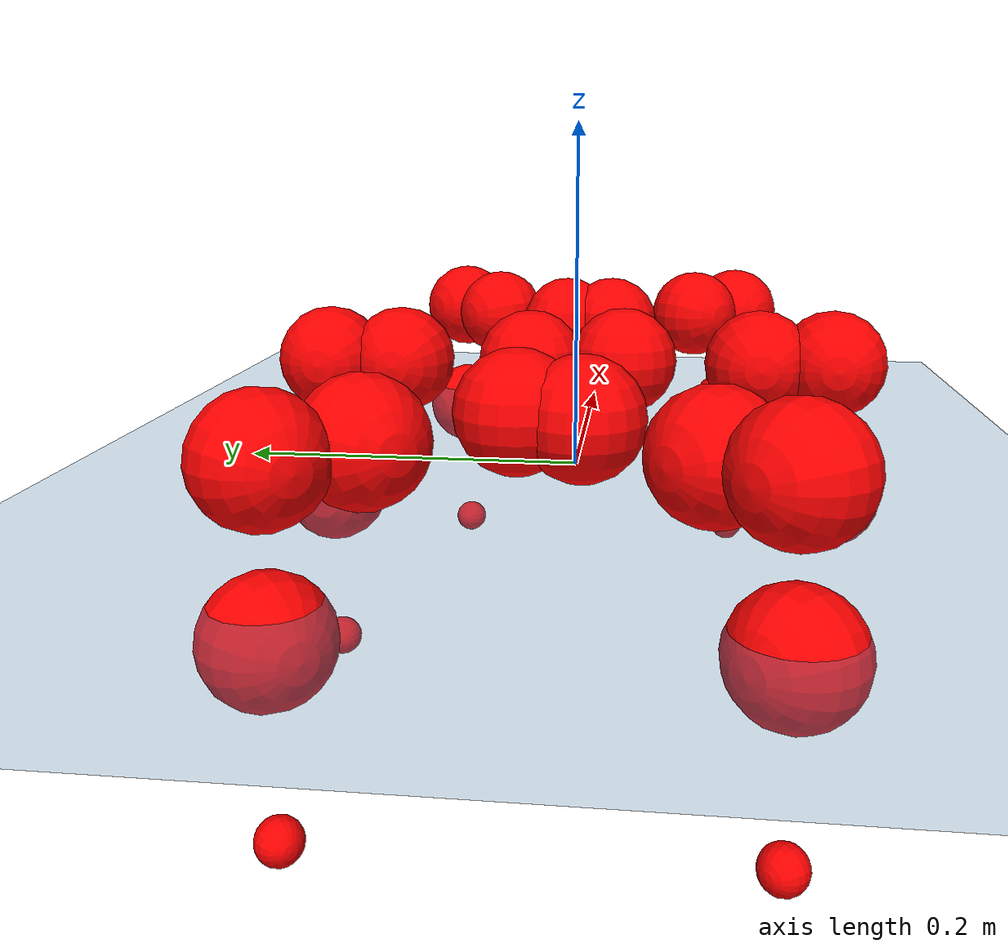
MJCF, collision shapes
<mujoco model="Golem">
  <compiler angle="radian" assetdir="assets" balanceinertia="true" inertiafromgeom="false"/>

  <option timestep="0.005" density="1.2" viscosity="2e-05"/>

  <size nkey="1"/>

  <visual>
    <quality shadowsize="8192"/>
    <map shadowclip="0.5"/>
  </visual>

  <default>
    <default class="/">
      <joint armature="0.01" damping="0.01" frictionloss="0.01"/>
      <geom contype="0" conaffinity="0" group="1" solref="-1000 -80"/>
      <site size="0.01 0.005 0.005" group="5"/>
      <general forcelimited="true" biastype="affine" gainprm="25" biasprm="0 -25 -0.5"/>
      <default class="visual">
        <geom type="mesh" group="2"/>
      </default>
      <default class="collision">
        <geom group="3"/>
      </default>
      <default class="foot">
        <geom size="0.01 0 0" condim="6" group="4" priority="1" solimp="0.015 1 0.01"/>
      </default>
      <default class="reward_collision_sphere">
        <geom group="5" rgba="1 0 0 1"/>
      </default>
    </default>
  </default>

  <asset>
    <texture type="skybox" colorspace="auto" name="//unnamed_texture_0" builtin="gradient" rgb1="0.95 0.95 0.95" rgb2="0.95 0.95 0.95" width="100" height="600"/>
    <texture type="2d" colorspace="auto" name="texplane" builtin="checker" rgb1="0.345 0.575 0.748" rgb2="0.345 0.575 0.748" markrgb="1 1 1" width="512" height="512"/>
    <material name="MatPlane" class="/" texture="texplane" texuniform="true" texrepeat="2 2" specular="0.9"/>
    <mesh name="body" class="/" file="body.stl" scale="0.001 0.001 0.001"/>
    <mesh name="coxa" class="/" file="coxa.stl" scale="0.001 0.001 0.001"/>
    <mesh name="femur" class="/" file="femur.stl" scale="0.001 0.001 0.001"/>
    <mesh name="tibia" class="/" file="tibia.stl" scale="0.001 0.001 0.001"/>
    <mesh name="tarsus" class="/" file="tarsus.stl" scale="0.001 0.001 0.001"/>
  </asset>

  <worldbody>
    <geom name="floor" class="/" size="100 100 0.125" type="plane" group="0" material="MatPlane"/>
    <light name="toplight_shadow" class="/" pos="0 0 5" dir="0.0990148 0.0990148 -0.990148" type="directional" ambient="0.04 0.04 0.04" diffuse="0.55 0.55 0.55" specular="0.12 0.12 0.12"/>
    <light name="toplight_fill" class="/" pos="0 0 5" dir="0.0990148 0.0990148 -0.990148" type="directional" castshadow="false" ambient="0.04 0.04 0.04" diffuse="0.3 0.3 0.3" specular="0.08 0.08 0.08"/>
    <body name="trunk" pos="-4.63751e-05 -1.5732e-05 -0.00101918" quat="0.999999 -0.000320275 -0.00011572 -0.00123723">
      <inertial pos="-0.000708554 -0.000760997 -0.0031336" quat="1 -0.000599988 -0.000107636 0.000530076" mass="1.74321" diaginertia="0.00579848 0.000107431 0.0101345"/>
      <joint name="//unnamed_joint_0" type="free"/>
      <geom name="//unnamed_geom_1" class="/" pos="0 0 0.0642872" quat="1 0 0 0" type="mesh" rgba="0.9 0.9 0.9 1" mesh="body"/>
      <site name="imu" class="/" pos="0.129263 -0.00284203 0.0989211" size="0.00769143"/>
      <camera name="track" class="/" pos="0 -0.809692 0" quat="0.707107 0.707107 0 0" mode="trackcom"/>
      <camera name="ego_camera" class="/" pos="0.116752 0 0.100449" quat="-0.5 -0.5 0.5 0.5"/>
      <body name="coxa_RR" pos="-0.161267 -0.0326669 0.0634891" quat="0.383183 0.000944784 -0.000713414 -0.923672">
        <inertial pos="0.000324061 -0.00015984 0.00231494" quat="0.999987 0.00269066 -0.00286972 0.00330969" mass="0.0941941" diaginertia="0.00597694 0.000111441 0.0104118"/>
        <joint name="coxa_joint_RR" class="/" pos="0 0 0" axis="0.00399369 0.00215821 -0.99999" range="-3.17422 3.09031" armature="0.00768247" damping="0.00407348" frictionloss="0.00794029"/>
        <geom name="//unnamed_geom_2" class="/" type="mesh" rgba="0.2 0.2 0.2 1" mesh="coxa"/>
        <geom name="//unnamed_geom_3" class="reward_collision_sphere" size="0.0307657" pos="-0.0269428 0 0"/>
        <body name="femur_RR" pos="0.0551733 0.00169363 -0.000403395" quat="0.500104 -0.500085 0.499632 0.500179">
          <inertial pos="-0.000279927 -0.000451483 0.00113488" quat="0.999997 0.00209524 0.00077276 0.000577211" mass="0.0914736" diaginertia="0.00582417 0.000108878 0.0103347"/>
          <joint name="femur_joint_RR" class="/" pos="0 0 0" axis="-0.000144488 0.00119216 -0.999999" stiffness="0.00030084" range="-3.09209 3.14705" armature="0.00682229" damping="0" frictionloss="0.00807276"/>
          <geom name="//unnamed_geom_4" class="/" type="mesh" rgba="0.9 0.9 0.9 1" mesh="femur"/>
          <geom name="//unnamed_geom_5" class="reward_collision_sphere" size="0.0307657"/>
          <body name="tibia_RR" pos="-0.00217747 -0.0420522 0.00171797" quat="0.000329042 1 -0.000576422 -0.000134238">
            <inertial pos="0.00191005 0.00101049 0.000238147" quat="0.999998 5.41073e-06 -0.00183366 -0.000915134" mass="0.09313" diaginertia="0.0059077 0.000108875 0.0099547"/>
            <joint name="tibia_joint_RR" class="/" pos="0 0 0" axis="-0.00848369 -0.00785638 0.999933" range="-3.09049 3.14767" armature="0.00699557" damping="0" frictionloss="0.00788758"/>
            <geom name="//unnamed_geom_6" class="/" type="mesh" rgba="0.2 0.2 0.2 1" mesh="tibia"/>
            <geom name="//unnamed_geom_7" class="reward_collision_sphere" size="0.0307657"/>
            <body name="tarsus_RR" pos="0.0764438 0.00120698 -0.00145972" quat="1 1.49894e-05 -0.000252245 -0.000172158">
              <inertial pos="0.0538969 0.00100538 -0.00105647" quat="0.49894 0.499646 0.50122 0.500192" mass="0.0917078" diaginertia="0.00586913 0.000108442 0.010372"/>
              <joint name="tarsus_joint_RR" class="/" pos="0 0 0" axis="0.00463794 -0.0066236 0.999967" range="-3.13561 3.14632" armature="0.00817335" damping="0" frictionloss="0.0074072"/>
              <geom name="//unnamed_geom_8" class="/" type="mesh" rgba="0.9 0.9 0.9 1" mesh="tarsus"/>
              <geom name="foot_1" class="foot" size="0.00735863" pos="0.100587 0 0" quat="0 -0.707107 0 0.707107"/>
              <geom name="//unnamed_geom_10" class="reward_collision_sphere" size="0.0307657"/>
              <geom name="//unnamed_geom_11" class="reward_collision_sphere" size="0.0115371" pos="0.0965452 0 0"/>
              <site name="foot_1" class="foot" pos="0.100587 0 0" quat="0 -0.707107 0 0.707107" size="0.00769143"/>
            </body>
          </body>
        </body>
      </body>
      <body name="coxa_RM" pos="-0.000145516 -0.0546064 0.0648236" quat="0.70682 0.000854653 -0.00071211 -0.707392">
        <inertial pos="0.000385961 -0.00209839 0.000760193" quat="0.999998 -0.0011153 0.00147919 0.000880702" mass="0.0896541" diaginertia="0.0057362 0.000109422 0.0103231"/>
        <joint name="coxa_joint_RM" class="/" pos="0 0 0" axis="-0.0119645 -0.00304046 -0.999924" range="-3.13786 3.17746" armature="0.00865479" damping="0" frictionloss="0.00715926"/>
        <geom name="//unnamed_geom_12" class="/" type="mesh" rgba="0.2 0.2 0.2 1" mesh="coxa"/>
        <geom name="//unnamed_geom_13" class="reward_collision_sphere" size="0.0307657" pos="-0.0269428 0 0"/>
        <body name="femur_RM" pos="0.0507616 0.000344334 4.14464e-05" quat="0.500228 -0.499893 0.500033 0.499845">
          <inertial pos="0.000901985 -0.00119947 9.23052e-05" quat="0.999987 0.00146432 0.00327207 0.00358447" mass="0.0924" diaginertia="0.00577082 0.000111488 0.0104764"/>
          <joint name="femur_joint_RM" class="/" pos="0 0 0" axis="0.00327937 -0.00036845 -0.999995" range="-3.14018 3.12892" armature="0.00746396" damping="0.00610047" frictionloss="0.00813708"/>
          <geom name="//unnamed_geom_14" class="/" type="mesh" rgba="0.9 0.9 0.9 1" mesh="femur"/>
          <geom name="//unnamed_geom_15" class="reward_collision_sphere" size="0.0307657"/>
          <body name="tibia_RM" pos="-0.0004629 -0.0417825 0.000212668" quat="-1.54579e-05 1 -1.88681e-05 -1.86032e-05">
            <inertial pos="-0.000520023 -0.00174582 -0.00223674" quat="0.999945 -0.00530458 -0.00895198 -0.00105723" mass="0.0907455" diaginertia="0.00603775 0.000109943 0.0105249"/>
            <joint name="tibia_joint_RM" class="/" pos="0 0 0" axis="-0.000271172 -6.30174e-06 1" range="-3.15447 3.14679" armature="0.00852245" damping="0.00184766" frictionloss="0.00866874"/>
            <geom name="//unnamed_geom_16" class="/" type="mesh" rgba="0.2 0.2 0.2 1" mesh="tibia"/>
            <geom name="//unnamed_geom_17" class="reward_collision_sphere" size="0.0307657"/>
            <body name="tarsus_RM" pos="0.0775749 0.000304139 0.00192621" quat="1 -1.43369e-05 -2.65775e-05 3.27476e-05">
              <inertial pos="0.055155 0.00119476 0.000236938" quat="0.495891 0.498825 0.501201 0.504047" mass="0.0900588" diaginertia="0.00583991 0.000108159 0.0100946"/>
              <joint name="tarsus_joint_RM" class="/" pos="0 0 0" axis="-0.000693412 3.77416e-05 1" range="-3.09024 3.13829" armature="0.0087195" damping="0.000497806" frictionloss="0.00790524"/>
              <geom name="//unnamed_geom_18" class="/" type="mesh" rgba="0.9 0.9 0.9 1" mesh="tarsus"/>
              <geom name="foot_2" class="foot" size="0.00842367" pos="0.100587 0 0" quat="0 -0.707107 0 0.707107"/>
              <geom name="//unnamed_geom_20" class="reward_collision_sphere" size="0.0307657"/>
              <geom name="//unnamed_geom_21" class="reward_collision_sphere" size="0.0115371" pos="0.0965452 0 0"/>
              <site name="foot_2" class="foot" pos="0.100587 0 0" quat="0 -0.707107 0 0.707107" size="0.00769143"/>
            </body>
          </body>
        </body>
      </body>
      <body name="coxa_RF" pos="0.158827 -0.0336338 0.0660842" quat="0.923775 0.000343066 -1.4541e-05 -0.382936">
        <inertial pos="-0.0012376 -0.00272531 0.00134187" quat="0.999976 -0.00590556 -0.00172556 -0.00318445" mass="0.0919153" diaginertia="0.00592419 0.000107297 0.0102107"/>
        <joint name="coxa_joint_RF" class="/" pos="0 0 0" axis="0.00194086 0.00196326 -0.999996" range="-3.13015 3.18617" armature="0.00738938" damping="0" frictionloss="0.0077491"/>
        <geom name="//unnamed_geom_22" class="/" type="mesh" rgba="0.2 0.2 0.2 1" mesh="coxa"/>
        <geom name="//unnamed_geom_23" class="reward_collision_sphere" size="0.0307657" pos="-0.0269428 0 0"/>
        <body name="femur_RF" pos="0.0560628 -6.40191e-05 -0.00164241" quat="0.499335 -0.500438 0.499553 0.500672">
          <inertial pos="0.000712308 -0.00181708 0.00245377" quat="0.999925 0.00801209 0.00867265 0.00336931" mass="0.0924702" diaginertia="0.00579851 0.000105734 0.0103779"/>
          <joint name="femur_joint_RF" class="/" pos="0 0 0" axis="-0.00213679 0.00316936 -0.999993" range="-3.11425 3.1379" armature="0.00753026" damping="0" frictionloss="0.00679225"/>
          <geom name="//unnamed_geom_24" class="/" type="mesh" rgba="0.9 0.9 0.9 1" mesh="femur"/>
          <geom name="//unnamed_geom_25" class="reward_collision_sphere" size="0.0307657"/>
          <body name="tibia_RF" pos="0.00133833 -0.0453024 0.000513064" quat="0.000686768 1 0.000270265 -0.000399287">
            <inertial pos="-0.000305055 0.000782776 0.000671188" quat="0.999983 -0.000210537 -0.00578045 -0.000407219" mass="0.0915529" diaginertia="0.00588466 0.000110054 0.0104748"/>
            <joint name="tibia_joint_RF" class="/" pos="0 0 0" axis="-0.00636742 -0.0070211 0.999955" range="-3.11899 3.13993" armature="0.00799323" damping="0.00439062" frictionloss="0.00766606"/>
            <geom name="//unnamed_geom_26" class="/" type="mesh" rgba="0.2 0.2 0.2 1" mesh="tibia"/>
            <geom name="//unnamed_geom_27" class="reward_collision_sphere" size="0.0307657"/>
            <body name="tarsus_RF" pos="0.0787701 0.00171851 -0.000479432" quat="0.999999 0.000895625 -0.000425432 0.000697546">
              <inertial pos="0.0514193 -0.000399196 0.00254981" quat="0.496483 0.506417 0.497832 0.499209" mass="0.0877624" diaginertia="0.00583295 0.000106035 0.00998463"/>
              <joint name="tarsus_joint_RF" class="/" pos="0 0 0" axis="-0.00989318 -0.0106084 0.999895" stiffness="6.97782e-05" range="-3.09027 3.11673" armature="0.00768549" damping="0" frictionloss="0.00813109"/>
              <geom name="//unnamed_geom_28" class="/" type="mesh" rgba="0.9 0.9 0.9 1" mesh="tarsus"/>
              <geom name="foot_3" class="foot" size="0.00749918" pos="0.100587 0 0" quat="0 -0.707107 0 0.707107"/>
              <geom name="//unnamed_geom_30" class="reward_collision_sphere" size="0.0307657"/>
              <geom name="//unnamed_geom_31" class="reward_collision_sphere" size="0.0115371" pos="0.0965452 0 0"/>
              <site name="foot_3" class="foot" pos="0.100587 0 0" quat="0 -0.707107 0 0.707107" size="0.00769143"/>
            </body>
          </body>
        </body>
      </body>
      <body name="coxa_LR" pos="-0.157607 0.0366648 0.0653592" quat="0.383773 0.00015476 -0.000152965 0.923428">
        <inertial pos="0.00265221 0.000360215 0.000204193" quat="0.999964 -0.00757882 0.0019137 0.00323238" mass="0.0897418" diaginertia="0.00578404 0.000107643 0.0101205"/>
        <joint name="coxa_joint_LR" class="/" pos="0 0 0" axis="-0.0100976 0.00184865 -0.999947" range="-3.12026 3.14502" armature="0.00790546" damping="0.00858602" frictionloss="0.00768543"/>
        <geom name="//unnamed_geom_32" class="/" type="mesh" rgba="0.2 0.2 0.2 1" mesh="coxa"/>
        <geom name="//unnamed_geom_33" class="reward_collision_sphere" size="0.0307657" pos="-0.0269428 0 0"/>
        <body name="femur_LR" pos="0.0540754 -0.0042638 -0.00223607" quat="0.500412 -0.499636 0.499144 0.500806">
          <inertial pos="-0.0011238 -4.37797e-05 0.00068211" quat="1 0.000166069 -4.69607e-05 0.000227601" mass="0.0912031" diaginertia="0.00581585 0.000108039 0.0101671"/>
          <joint name="femur_joint_LR" class="/" pos="0 0 0" axis="1.94448e-05 2.93706e-05 1" range="-3.13999 3.19033" armature="0.00758166" damping="0.000405429" frictionloss="0.00867069"/>
          <geom name="//unnamed_geom_34" class="/" type="mesh" rgba="0.9 0.9 0.9 1" mesh="femur"/>
          <geom name="//unnamed_geom_35" class="reward_collision_sphere" size="0.0307657"/>
          <body name="tibia_LR" pos="0.000892572 -0.0463904 -0.00364835" quat="6.01627e-05 1 -4.14467e-05 -6.75546e-05">
            <inertial pos="-0.000813349 -0.00118219 0.00134401" quat="0.999986 -0.00405731 0.00314818 0.00097886" mass="0.0915947" diaginertia="0.00589904 0.000111644 0.010311"/>
            <joint name="tibia_joint_LR" class="/" pos="0 0 0" axis="-0.000354163 0.000566699 -1" range="-3.15965 3.09455" armature="0.00677626" damping="0" frictionloss="0.00761786"/>
            <geom name="//unnamed_geom_36" class="/" type="mesh" rgba="0.2 0.2 0.2 1" mesh="tibia"/>
            <geom name="//unnamed_geom_37" class="reward_collision_sphere" size="0.0307657"/>
            <body name="tarsus_LR" pos="0.0796576 0.00108789 -0.00025976" quat="1 0.000133733 -0.000406316 -0.000458676">
              <inertial pos="0.0552068 0.000304744 0.000743695" quat="0.501479 0.498177 0.499707 0.500631" mass="0.0896738" diaginertia="0.00578757 0.000108399 0.0101427"/>
              <joint name="tarsus_joint_LR" class="/" pos="0 0 0" axis="-0.000825988 0.000449274 -1" range="-3.09127 3.13608" armature="0.00778469" damping="0" frictionloss="0.00754701"/>
              <geom name="//unnamed_geom_38" class="/" type="mesh" rgba="0.9 0.9 0.9 1" mesh="tarsus"/>
              <geom name="foot_4" class="foot" size="0.00705757" pos="0.100587 0 0" quat="0.707107 0 -0.707107 0"/>
              <geom name="//unnamed_geom_40" class="reward_collision_sphere" size="0.0307657"/>
              <geom name="//unnamed_geom_41" class="reward_collision_sphere" size="0.0115371" pos="0.0965452 0 0"/>
              <site name="foot_4" class="foot" pos="0.100587 0 0" quat="0.707107 0 -0.707107 0" size="0.00769143"/>
            </body>
          </body>
        </body>
      </body>
      <body name="coxa_LM" pos="-0.00386571 0.0533704 0.0632639" quat="0.707268 7.06553e-05 0.00145867 0.706944">
        <inertial pos="0.000942477 0.000144815 0.00164147" quat="1 3.94447e-05 0.000305925 0.000165547" mass="0.0949505" diaginertia="0.00622171 0.00011211 0.0105168"/>
        <joint name="coxa_joint_LM" class="/" pos="0 0 0" axis="0.00222189 -0.000695774 -0.999997" stiffness="0.00546794" range="-3.17697 3.15493" armature="0.00720911" damping="0.00742837" frictionloss="0.00836739"/>
        <geom name="//unnamed_geom_42" class="/" type="mesh" rgba="0.2 0.2 0.2 1" mesh="coxa"/>
        <geom name="//unnamed_geom_43" class="reward_collision_sphere" size="0.0307657" pos="-0.0269428 0 0"/>
        <body name="femur_LM" pos="0.0491769 0.00327202 0.00126261" quat="0.500007 -0.50005 0.49988 0.500063">
          <inertial pos="0.000220066 -0.00137973 0.000503885" quat="0.999995 -0.0019357 -0.00196887 0.00150628" mass="0.086573" diaginertia="0.00573118 0.000105843 0.00996862"/>
          <joint name="femur_joint_LM" class="/" pos="0 0 0" axis="0.00326854 0.00185623 0.999993" range="-3.15987 3.13302" armature="0.00763549" damping="0" frictionloss="0.00803198"/>
          <geom name="//unnamed_geom_44" class="/" type="mesh" rgba="0.9 0.9 0.9 1" mesh="femur"/>
          <geom name="//unnamed_geom_45" class="reward_collision_sphere" size="0.0307657"/>
          <body name="tibia_LM" pos="-0.000223919 -0.0420417 0.00278857" quat="8.20577e-05 1 1.19626e-05 6.1952e-06">
            <inertial pos="-0.00246784 0.000752375 -0.000123856" quat="1 -0.000228414 -0.000136167 -0.000189068" mass="0.0920141" diaginertia="0.00564207 0.000107992 0.010152"/>
            <joint name="tibia_joint_LM" class="/" pos="0 0 0" axis="-0.000757019 0.00228673 -0.999997" range="-3.11016 3.13867" armature="0.00779219" damping="0.00428297" frictionloss="0.00753065"/>
            <geom name="//unnamed_geom_46" class="/" type="mesh" rgba="0.2 0.2 0.2 1" mesh="tibia"/>
            <geom name="//unnamed_geom_47" class="reward_collision_sphere" size="0.0307657"/>
            <body name="tarsus_LM" pos="0.0801908 0.000171612 -0.00223708" quat="1 -9.0585e-05 -0.000189906 -0.000254463">
              <inertial pos="0.0537344 0.000807556 -0.00013058" quat="0.49983 0.500176 0.499879 0.500115" mass="0.0893811" diaginertia="0.00581908 0.000107858 0.0103935"/>
              <joint name="tarsus_joint_LM" class="/" pos="0 0 0" axis="-0.000235581 0.00676836 -0.999977" range="-3.15812 3.11039" armature="0.00765034" damping="0.0107063" frictionloss="0.00696909"/>
              <geom name="//unnamed_geom_48" class="/" type="mesh" rgba="0.9 0.9 0.9 1" mesh="tarsus"/>
              <geom name="foot_5" class="foot" size="0.00756229" pos="0.100587 0 0" quat="0.707107 0 -0.707107 0"/>
              <geom name="//unnamed_geom_50" class="reward_collision_sphere" size="0.0307657"/>
              <geom name="//unnamed_geom_51" class="reward_collision_sphere" size="0.0115371" pos="0.0965452 0 0"/>
              <site name="foot_5" class="foot" pos="0.100587 0 0" quat="0.707107 0 -0.707107 0" size="0.00769143"/>
            </body>
          </body>
        </body>
      </body>
      <body name="coxa_LF" pos="0.161258 0.0359611 0.0654213" quat="0.92383 -0.000115955 -5.78821e-05 0.382804">
        <inertial pos="0.00019794 -0.00121564 7.36852e-05" quat="0.999987 0.0023601 0.000536282 -0.0045108" mass="0.0894084" diaginertia="0.00571216 0.000103734 0.0100154"/>
        <joint name="coxa_joint_LF" class="/" pos="0 0 0" axis="0.00234459 0.00775143 -0.999967" range="-3.16283 3.15404" armature="0.0075674" damping="0" frictionloss="0.00774348"/>
        <geom name="//unnamed_geom_52" class="/" type="mesh" rgba="0.2 0.2 0.2 1" mesh="coxa"/>
        <geom name="//unnamed_geom_53" class="reward_collision_sphere" size="0.0307657" pos="-0.0269428 0 0"/>
        <body name="femur_LF" pos="0.0516783 0.000251265 -0.00204696" quat="0.500075 -0.50025 0.499823 0.499852">
          <inertial pos="-0.000513345 0.000835302 0.00023992" quat="0.999918 -0.000704736 -0.0023507 -0.012546" mass="0.0912441" diaginertia="0.00593709 0.000105942 0.0101725"/>
          <joint name="femur_joint_LF" class="/" pos="0 0 0" axis="-0.000605094 0.00690552 0.999976" stiffness="0.000549924" range="-3.12806 3.1433" armature="0.00754417" damping="0.0014901" frictionloss="0.00670276"/>
          <geom name="//unnamed_geom_54" class="/" type="mesh" rgba="0.9 0.9 0.9 1" mesh="femur"/>
          <geom name="//unnamed_geom_55" class="reward_collision_sphere" size="0.0307657"/>
          <body name="tibia_LF" pos="-0.000740262 -0.0432449 0.00022377" quat="2.07983e-05 1 0.000268824 -9.55487e-05">
            <inertial pos="-0.000568008 -0.000377586 0.000679197" quat="1 9.91953e-05 -0.000165559 1.44369e-05" mass="0.0921609" diaginertia="0.00592123 0.000108735 0.0102055"/>
            <joint name="tibia_joint_LF" class="/" pos="0 0 0" axis="-0.006509 0.000717447 -0.999979" range="-3.1903 3.14915" armature="0.00775093" damping="0.00522806" frictionloss="0.00727574"/>
            <geom name="//unnamed_geom_56" class="/" type="mesh" rgba="0.2 0.2 0.2 1" mesh="tibia"/>
            <geom name="//unnamed_geom_57" class="reward_collision_sphere" size="0.0307657"/>
            <body name="tarsus_LF" pos="0.0793906 -0.000298955 0.000566961" quat="1 6.52676e-05 0.00010902 -6.43223e-05">
              <inertial pos="0.0552694 0.000254042 0.00271702" quat="0.50037 0.499811 0.499799 0.500019" mass="0.0926792" diaginertia="0.00581907 0.00010956 0.0103282"/>
              <joint name="tarsus_joint_LF" class="/" pos="0 0 0" axis="-0.0100641 -0.00155666 -0.999948" stiffness="0.0306281" range="-3.13672 3.14769" armature="0.00767735" damping="0.026227" frictionloss="0.00761233"/>
              <geom name="//unnamed_geom_58" class="/" type="mesh" rgba="0.9 0.9 0.9 1" mesh="tarsus"/>
              <geom name="foot_6" class="foot" size="0.00776578" pos="0.100587 0 0" quat="0.707107 0 -0.707107 0"/>
              <geom name="//unnamed_geom_60" class="reward_collision_sphere" size="0.0307657"/>
              <geom name="//unnamed_geom_61" class="reward_collision_sphere" size="0.0115371" pos="0.0965452 0 0"/>
              <site name="foot_6" class="foot" pos="0.100587 0 0" quat="0.707107 0 -0.707107 0" size="0.00769143"/>
            </body>
          </body>
        </body>
      </body>
    </body>
  </worldbody>

  <contact>
    <pair class="/" geom1="floor" geom2="foot_1" name="//unnamed_contact_0"/>
    <pair class="/" geom1="floor" geom2="foot_2" name="//unnamed_contact_1"/>
    <pair class="/" geom1="floor" geom2="foot_3" name="//unnamed_contact_2"/>
    <pair class="/" geom1="floor" geom2="foot_4" name="//unnamed_contact_3"/>
    <pair class="/" geom1="floor" geom2="foot_5" name="//unnamed_contact_4"/>
    <pair class="/" geom1="floor" geom2="foot_6" name="//unnamed_contact_5"/>
  </contact>

  <actuator>
    <general name="coxa_joint_RR" class="/" joint="coxa_joint_RR" forcerange="-5.91049 5.91049" gainprm="17.5035" biasprm="0 -17.5035 -0.375109"/>
    <general name="femur_joint_RR" class="/" joint="femur_joint_RR" forcerange="-5.52488 5.52488" gainprm="17.5035" biasprm="0 -17.5035 -0.375109"/>
    <general name="tibia_joint_RR" class="/" joint="tibia_joint_RR" forcerange="-5.83141 5.83141" gainprm="17.5035" biasprm="0 -17.5035 -0.375109"/>
    <general name="tarsus_joint_RR" class="/" joint="tarsus_joint_RR" forcerange="-5.45032 5.45032" gainprm="17.5035" biasprm="0 -17.5035 -0.375109"/>
    <general name="coxa_joint_RM" class="/" joint="coxa_joint_RM" forcerange="-5.92537 5.92537" gainprm="17.5035" biasprm="0 -17.5035 -0.375109"/>
    <general name="femur_joint_RM" class="/" joint="femur_joint_RM" forcerange="-6.03237 6.03237" gainprm="17.5035" biasprm="0 -17.5035 -0.375109"/>
    <general name="tibia_joint_RM" class="/" joint="tibia_joint_RM" forcerange="-5.68389 5.68389" gainprm="17.5035" biasprm="0 -17.5035 -0.375109"/>
    <general name="tarsus_joint_RM" class="/" joint="tarsus_joint_RM" forcerange="-6.14997 6.14997" gainprm="17.5035" biasprm="0 -17.5035 -0.375109"/>
    <general name="coxa_joint_RF" class="/" joint="coxa_joint_RF" forcerange="-6.10296 6.10296" gainprm="17.5035" biasprm="0 -17.5035 -0.375109"/>
    <general name="femur_joint_RF" class="/" joint="femur_joint_RF" forcerange="-5.12504 5.12504" gainprm="17.5035" biasprm="0 -17.5035 -0.375109"/>
    <general name="tibia_joint_RF" class="/" joint="tibia_joint_RF" forcerange="-5.72736 5.72736" gainprm="17.5035" biasprm="0 -17.5035 -0.375109"/>
    <general name="tarsus_joint_RF" class="/" joint="tarsus_joint_RF" forcerange="-5.73192 5.73192" gainprm="17.5035" biasprm="0 -17.5035 -0.375109"/>
    <general name="coxa_joint_LR" class="/" joint="coxa_joint_LR" forcerange="-5.61069 5.61069" gainprm="17.5035" biasprm="0 -17.5035 -0.375109"/>
    <general name="femur_joint_LR" class="/" joint="femur_joint_LR" forcerange="-5.36064 5.36064" gainprm="17.5035" biasprm="0 -17.5035 -0.375109"/>
    <general name="tibia_joint_LR" class="/" joint="tibia_joint_LR" forcerange="-5.70667 5.70667" gainprm="17.5035" biasprm="0 -17.5035 -0.375109"/>
    <general name="tarsus_joint_LR" class="/" joint="tarsus_joint_LR" forcerange="-5.6485 5.6485" gainprm="17.5035" biasprm="0 -17.5035 -0.375109"/>
    <general name="coxa_joint_LM" class="/" joint="coxa_joint_LM" forcerange="-5.61665 5.61665" gainprm="17.5035" biasprm="0 -17.5035 -0.375109"/>
    <general name="femur_joint_LM" class="/" joint="femur_joint_LM" forcerange="-5.59062 5.59062" gainprm="17.5035" biasprm="0 -17.5035 -0.375109"/>
    <general name="tibia_joint_LM" class="/" joint="tibia_joint_LM" forcerange="-5.08304 5.08304" gainprm="17.5035" biasprm="0 -17.5035 -0.375109"/>
    <general name="tarsus_joint_LM" class="/" joint="tarsus_joint_LM" forcerange="-5.61166 5.61166" gainprm="17.5035" biasprm="0 -17.5035 -0.375109"/>
    <general name="coxa_joint_LF" class="/" joint="coxa_joint_LF" forcerange="-6.03905 6.03905" gainprm="17.5035" biasprm="0 -17.5035 -0.375109"/>
    <general name="femur_joint_LF" class="/" joint="femur_joint_LF" forcerange="-6.06286 6.06286" gainprm="17.5035" biasprm="0 -17.5035 -0.375109"/>
    <general name="tibia_joint_LF" class="/" joint="tibia_joint_LF" forcerange="-5.62143 5.62143" gainprm="17.5035" biasprm="0 -17.5035 -0.375109"/>
    <general name="tarsus_joint_LF" class="/" joint="tarsus_joint_LF" forcerange="-5.83517 5.83517" gainprm="17.5035" biasprm="0 -17.5035 -0.375109"/>
  </actuator>

  <sensor>
    <gyro site="imu" name="imu_angular_velocity"/>
    <velocimeter site="imu" name="imu_linear_velocity"/>
    <framelinvel objtype="site" objname="foot_1" name="foot_1_global_linear_velocity"/>
    <framelinvel objtype="site" objname="foot_2" name="foot_2_global_linear_velocity"/>
    <framelinvel objtype="site" objname="foot_3" name="foot_3_global_linear_velocity"/>
    <framelinvel objtype="site" objname="foot_4" name="foot_4_global_linear_velocity"/>
    <framelinvel objtype="site" objname="foot_5" name="foot_5_global_linear_velocity"/>
    <framelinvel objtype="site" objname="foot_6" name="foot_6_global_linear_velocity"/>
  </sensor>

  <keyframe>
    <key name="home" qpos="0 0 0.1457 1 0 0 0 0 0 0 0 0 0 0 0 0 0 0 0 0 0 0 0 0 0 0 0 0 0 0 0"/>
  </keyframe>
</mujoco>
